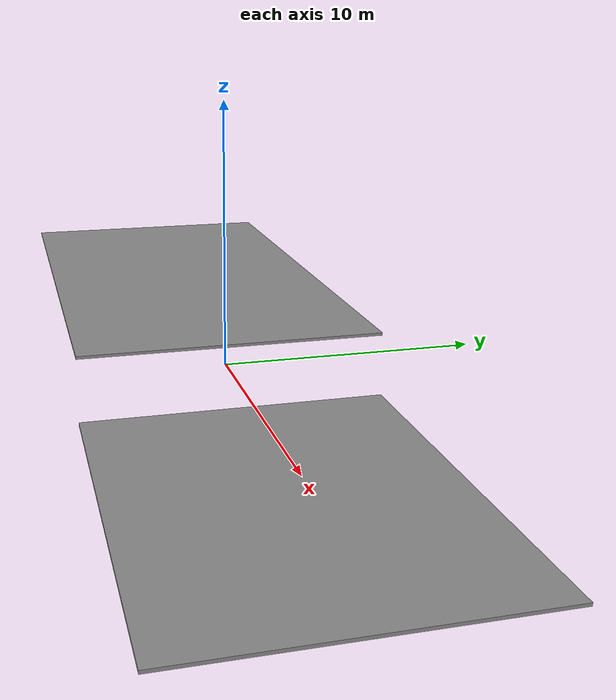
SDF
<?xml version='1.0'?>
<sdf version='1.6'>
  <model name='School'>
    <link name='link_0'>
      <inertial>
        <mass>18.4925</mass>
        <inertia>
          <ixx>205.26</ixx>
          <ixy>0</ixy>
          <ixz>0</ixz>
          <iyy>337.162</iyy>
          <iyz>0</iyz>
          <izz>542.385</izz>
        </inertia>
        <pose frame=''>0 0 0 0 -0 0</pose>
      </inertial>
      <pose frame=''>8.94569 0.003295 -1.2515 0 -0 0</pose>
      <visual name='visual'>
        <pose frame=''>0 0 0 0 -0 0</pose>
        <geometry>
          <box>
            <size>14.7911 11.5405 0.108707</size>
          </box>
        </geometry>
        <material>
          <lighting>1</lighting>
          <script>
            <uri>file://media/materials/scripts/gazebo.material</uri>
            <name>Gazebo/Grey</name>
          </script>
        </material>
        <transparency>0</transparency>
        <cast_shadows>1</cast_shadows>
      </visual>
      <collision name='collision'>
        <laser_retro>0</laser_retro>
        <max_contacts>10</max_contacts>
        <pose frame=''>0 0 0 0 -0 0</pose>
        <geometry>
          <box>
            <size>14.7911 11.5405 0.108707</size>
          </box>
        </geometry>
        <surface>
          <friction>
            <ode>
              <mu>1</mu>
              <mu2>1</mu2>
              <fdir1>0 0 0</fdir1>
              <slip1>0</slip1>
              <slip2>0</slip2>
            </ode>
            <torsional>
              <coefficient>1</coefficient>
              <patch_radius>0</patch_radius>
              <surface_radius>0</surface_radius>
              <use_patch_radius>1</use_patch_radius>
              <ode>
                <slip>0</slip>
              </ode>
            </torsional>
          </friction>
          <bounce>
            <restitution_coefficient>0</restitution_coefficient>
            <threshold>1e+06</threshold>
          </bounce>
          <contact>
            <collide_without_contact>0</collide_without_contact>
            <collide_without_contact_bitmask>1</collide_without_contact_bitmask>
            <collide_bitmask>1</collide_bitmask>
            <ode>
              <soft_cfm>0</soft_cfm>
              <soft_erp>0.2</soft_erp>
              <kp>1e+13</kp>
              <kd>1</kd>
              <max_vel>0.01</max_vel>
              <min_depth>0</min_depth>
            </ode>
            <bullet>
              <split_impulse>1</split_impulse>
              <split_impulse_penetration_threshold>-0.01</split_impulse_penetration_threshold>
              <soft_cfm>0</soft_cfm>
              <soft_erp>0.2</soft_erp>
              <kp>1e+13</kp>
              <kd>1</kd>
            </bullet>
          </contact>
        </surface>
      </collision>
    </link>
    <link name='link_0_clone'>
      <inertial>
        <mass>26.2005</mass>
        <inertia>
          <ixx>290.814</ixx>
          <ixy>0</ixy>
          <ixz>0</ixz>
          <iyy>958.887</iyy>
          <iyz>0</iyz>
          <izz>1249.65</izz>
        </inertia>
        <pose frame=''>0 0 0 0 -0 0</pose>
      </inertial>
      <pose frame=''>-8.94565 -0.003296 1.25151 0 -0 0</pose>
      <visual name='visual'>
        <pose frame=''>0 0 0 0 -0 0</pose>
        <geometry>
          <box>
            <size>20.9563 11.5405 0.108707</size>
          </box>
        </geometry>
        <material>
          <lighting>1</lighting>
          <script>
            <uri>file://media/materials/scripts/gazebo.material</uri>
            <name>Gazebo/Grey</name>
          </script>
          <shader type='pixel'/>
        </material>
        <transparency>0</transparency>
        <cast_shadows>1</cast_shadows>
      </visual>
      <collision name='collision'>
        <laser_retro>0</laser_retro>
        <max_contacts>10</max_contacts>
        <pose frame=''>0 0 0 0 -0 0</pose>
        <geometry>
          <box>
            <size>20.9563 11.5405 0.108707</size>
          </box>
        </geometry>
        <surface>
          <friction>
            <ode>
              <mu>1</mu>
              <mu2>1</mu2>
              <fdir1>0 0 0</fdir1>
              <slip1>0</slip1>
              <slip2>0</slip2>
            </ode>
            <torsional>
              <coefficient>1</coefficient>
              <patch_radius>0</patch_radius>
              <surface_radius>0</surface_radius>
              <use_patch_radius>1</use_patch_radius>
              <ode>
                <slip>0</slip>
              </ode>
            </torsional>
          </friction>
          <bounce>
            <restitution_coefficient>0</restitution_coefficient>
            <threshold>1e+06</threshold>
          </bounce>
          <contact>
            <collide_without_contact>0</collide_without_contact>
            <collide_without_contact_bitmask>1</collide_without_contact_bitmask>
            <collide_bitmask>1</collide_bitmask>
            <ode>
              <soft_cfm>0</soft_cfm>
              <soft_erp>0.2</soft_erp>
              <kp>1e+13</kp>
              <kd>1</kd>
              <max_vel>0.01</max_vel>
              <min_depth>0</min_depth>
            </ode>
            <bullet>
              <split_impulse>1</split_impulse>
              <split_impulse_penetration_threshold>-0.01</split_impulse_penetration_threshold>
              <soft_cfm>0</soft_cfm>
              <soft_erp>0.2</soft_erp>
              <kp>1e+13</kp>
              <kd>1</kd>
            </bullet>
          </contact>
        </surface>
      </collision>
    </link>
    <static>0</static>
    <allow_auto_disable>1</allow_auto_disable>
  </model>
</sdf>
